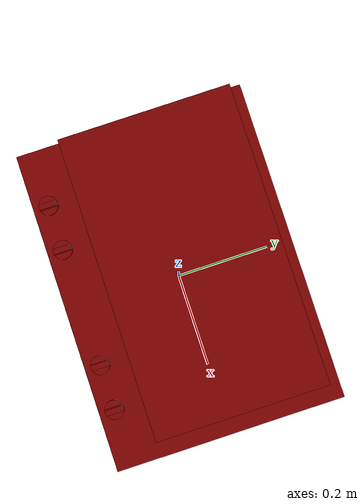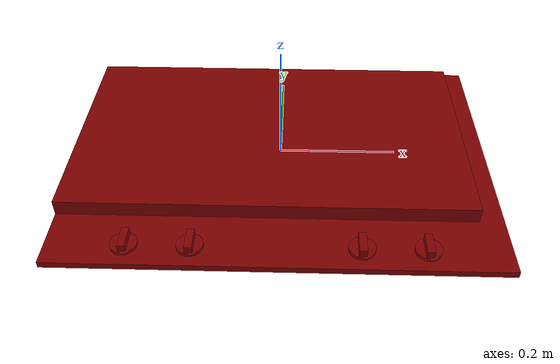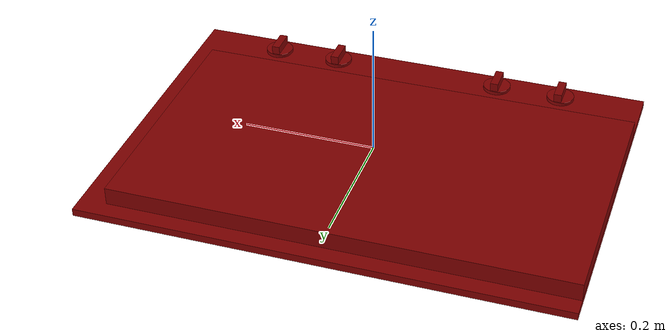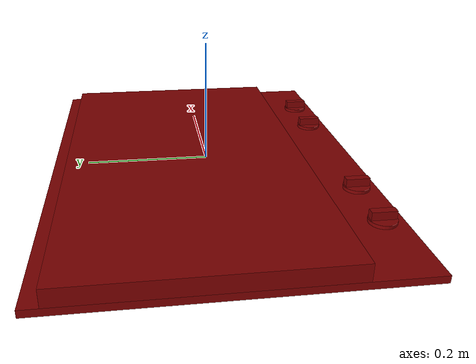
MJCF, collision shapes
<?xml version='1.0' encoding='UTF-8'?>
<mujoco model="model">
  <option timestep="0.002" gravity="0.0 0.0 -9.81"/>
  <compiler angle="radian"/>
  <asset>
    <mesh file="visuals/knob_front_left.obj" name="knob_front_left_vis"/>
    <mesh file="visuals/knob_front_right.obj" name="knob_front_right_vis"/>
    <mesh file="visuals/knob_rear_left.obj" name="knob_rear_left_vis"/>
    <mesh file="visuals/knob_rear_right.obj" name="knob_rear_right_vis"/>
    <mesh file="visuals/Body001.obj" name="Body001_vis"/>
    <texture file="visuals/T_BC001.png" name="Body001_material" type="2d"/>
    <material name="Body001_material" rgba="1 1 1 1.0" texture="Body001_material" shininess="0.4472135901451111" specular="2"/>
    <texture file="visuals/T_BC001.png" name="knob_front_left_material" type="2d"/>
    <material name="knob_front_left_material" rgba="1 1 1 1.0" texture="knob_front_left_material" shininess="0.4472135901451111" specular="2"/>
    <texture file="visuals/T_BC001.png" name="knob_front_right_material" type="2d"/>
    <material name="knob_front_right_material" rgba="1 1 1 1.0" texture="knob_front_right_material" shininess="0.4472135901451111" specular="2"/>
    <texture file="visuals/T_BC001.png" name="knob_rear_left_material" type="2d"/>
    <material name="knob_rear_left_material" rgba="1 1 1 1.0" texture="knob_rear_left_material" shininess="0.4472135901451111" specular="2"/>
    <texture file="visuals/T_BC001.png" name="knob_rear_right_material" type="2d"/>
    <material name="knob_rear_right_material" rgba="1 1 1 1.0" texture="knob_rear_right_material" shininess="0.4472135901451111" specular="2"/>
  </asset>
  <default>
    <default class="visual">
      <geom conaffinity="0" contype="0" group="1" type="mesh"/>
    </default>
    <default class="collision">
      <geom group="0" rgba="0.5 0 0 0.5"/>
    </default>
    <default class="spawn">
      <geom group="0" rgba="1 1 1 0.5" contype="0" conaffinity="0"/>
      <site group="0" rgba="1 1 1 0.5"/>
    </default>
    <default class="region">
      <geom group="1" conaffinity="0" contype="0" rgba="0 1 0 0"/>
    </default>
  </default>
  <worldbody>
    <body>
      <body name="object">
        <geom mesh="Body001_vis" type="mesh" solimp="0.998 0.998 0.001" solref="0.001 1" friction="0.95 0.3 0.1" class="visual" material="Body001_material"/>
        <geom class="collision" type="box" pos="0.00107880 0.00078189 -0.01413690" size="0.36089783906936646 0.259036660194397 0.00560992956161499" quat="1.0 0.0 0.0 0.0"/>
        <geom class="collision" type="box" pos="-0.01899245 0.03823111 0.00476968" size="0.3408265709877014 0.1952989399433136 0.0132813211530447" quat="1.0 0.0 0.0 0.0"/>
        <body name="knob_front_left">
          <joint axis="0.0 0.0 1.0" pos="-0.23347790 -0.22220281 0.00099897" limited="true" name="knob_front_left_joint" range="0.0 3.141592653589793" type="hinge" damping="0.2" armature="0.01" frictionloss="1"/>
          <geom mesh="knob_front_left_vis" type="mesh" solimp="0.998 0.998 0.001" solref="0.001 1" friction="0.95 0.3 0.1" class="visual" material="knob_front_left_material"/>
          <geom class="collision" type="cylinder" pos="-0.23449044 -0.22233172 -0.00266725" size="0.02115575224161148 0.002754976972937584" quat="1.0 0.0 0.0 0.0" friction="100 0.5 0.01"/>
          <geom class="collision" type="box" pos="-0.23339176 -0.22231278 0.00637593" size="0.00605419185012579 0.019009480252861977 0.006694527342915535" quat="1.0 0.0 0.0 0.0" name="knob_front_left_main" friction="100 0.5 0.01"/>
        </body>
        <body name="knob_front_right">
          <joint axis="0.0 0.0 1.0" pos="0.23128620 -0.22220281 0.00099897" limited="true" name="knob_front_right_joint" range="0.0 3.141592653589793" type="hinge" damping="0.2" armature="0.01" frictionloss="1"/>
          <geom mesh="knob_front_right_vis" type="mesh" solimp="0.998 0.998 0.001" solref="0.001 1" friction="0.95 0.3 0.1" class="visual" material="knob_front_right_material"/>
          <geom class="collision" type="cylinder" pos="0.23102944 -0.22233172 -0.00266725" size="0.02115575224161148 0.002754976972937584" quat="1.0 0.0 0.0 0.0" friction="100 0.5 0.01"/>
          <geom class="collision" type="box" pos="0.23086807 -0.22231278 0.00637593" size="0.0060541993007063866 0.019009524956345558 0.006694551557302475" quat="1.0 0.0 0.0 0.0" name="knob_front_right_main" friction="100 0.5 0.01"/>
        </body>
        <body name="knob_rear_left">
          <joint axis="0.0 0.0 1.0" pos="-0.13254334 -0.22220281 0.00099897" limited="true" name="knob_rear_left_joint" range="0.0 3.141592653589793" type="hinge" damping="0.2" armature="0.01" frictionloss="1"/>
          <geom mesh="knob_rear_left_vis" type="mesh" solimp="0.998 0.998 0.001" solref="0.001 1" friction="0.95 0.3 0.1" class="visual" material="knob_rear_left_material"/>
          <geom class="collision" type="cylinder" pos="-0.13300113 -0.22233172 -0.00266725" size="0.02115575224161148 0.002754976972937584" quat="1.0 0.0 0.0 0.0" friction="100 0.5 0.01"/>
          <geom class="collision" type="box" pos="-0.13261533 -0.22231278 0.00637593" size="0.006054195575416088 0.019009502604603767 0.006694539450109005" quat="1.0 0.0 0.0 0.0" name="knob_rear_left_main" friction="100 0.5 0.01"/>
        </body>
        <body name="knob_rear_right">
          <joint axis="0.0 0.0 1.0" pos="0.13035165 -0.22220281 0.00099897" limited="true" name="knob_rear_right_joint" range="0.0 3.141592653589793" type="hinge" damping="0.2" armature="0.01" frictionloss="1"/>
          <geom mesh="knob_rear_right_vis" type="mesh" solimp="0.998 0.998 0.001" solref="0.001 1" friction="0.95 0.3 0.1" class="visual" material="knob_rear_right_material"/>
          <geom class="collision" type="cylinder" pos="0.13027577 -0.22233172 -0.00266725" size="0.02115575224161148 0.002754976972937584" quat="1.0 0.0 0.0 0.0" friction="100 0.5 0.01"/>
          <geom class="collision" type="box" pos="0.13042985 -0.22231278 0.00637593" size="0.006054202560335398 0.01900954730808735 0.006694563198834658" quat="1.0 0.0 0.0 0.0" name="knob_rear_right_main" friction="100 0.5 0.01"/>
        </body>
        <site type="cylinder" rgba="0.3 0.4 1 0.5" size="0.0414312519133091 0.004686626605689526" pos="-0.13428484 -0.06357776 0.00363676" name="burner_on_front_left"/>
        <site type="cylinder" rgba="0.3 0.4 1 0.5" size="0.05582449957728386 0.004686626605689526" pos="-0.21201706 0.14134849 0.00363676" name="burner_on_rear_left"/>
        <site type="cylinder" rgba="0.3 0.4 1 0.5" size="0.04258672520518303 0.004686625674366951" pos="0.14836739 0.14134928 0.00363676" name="burner_on_rear_right"/>
        <site type="cylinder" rgba="0.3 0.4 1 0.5" size="0.028938956558704376 0.004686626605689526" pos="0.22889348 -0.06436575 0.00363676" name="burner_on_front_right"/>
        <site type="cylinder" rgba="0.5 0 0 0" size="0.0414312519133091 4.999999873689376e-05" pos="-0.13428484 -0.06345910 0.01804723" name="burner_front_left_place_site"/>
        <site type="cylinder" rgba="0.5 0 0 0" size="0.028938956558704376 4.999999873689376e-05" pos="0.22889348 -0.06424710 0.01804590" name="burner_front_right_place_site"/>
        <site type="cylinder" rgba="0.5 0 0 0" size="0.05582449957728386 4.999999873689376e-05" pos="-0.21201706 0.14134849 0.01803604" name="burner_rear_left_place_site"/>
        <site type="cylinder" rgba="0.5 0 0 0" size="0.04258672520518303 4.999999873689376e-05" pos="0.14836739 0.14134928 0.01803991" name="burner_rear_right_place_site"/>
        <geom class="region" name="reg_main" type="box" pos="0.0011262400000000006 4.3999999999044803e-07 -0.013078885000000002" size="0.36167304 0.26070602 0.005971725000000001"/>
      </body>
    </body>
  </worldbody>
  <actuator>
    <motor name="knob_front_left_joint_actuator" joint="knob_front_left_joint" gear="10"/>
    <motor name="knob_front_right_joint_actuator" joint="knob_front_right_joint" gear="10"/>
    <motor name="knob_rear_left_joint_actuator" joint="knob_rear_left_joint" gear="10"/>
    <motor name="knob_rear_right_joint_actuator" joint="knob_rear_right_joint" gear="10"/>
  </actuator>
</mujoco>
